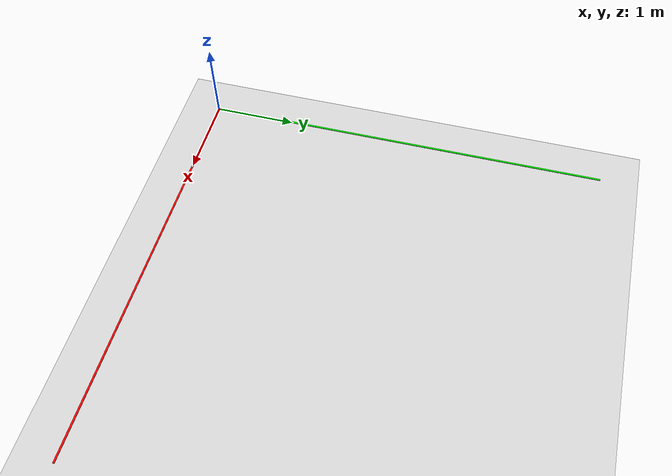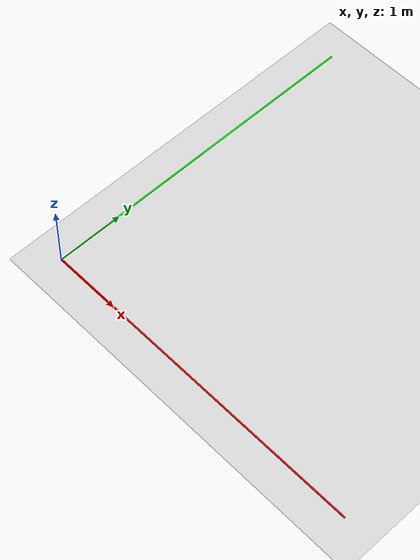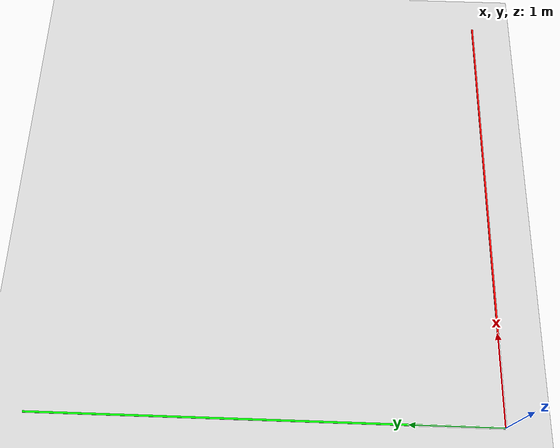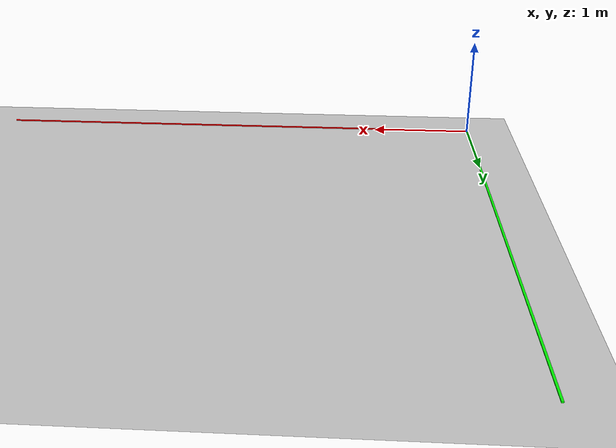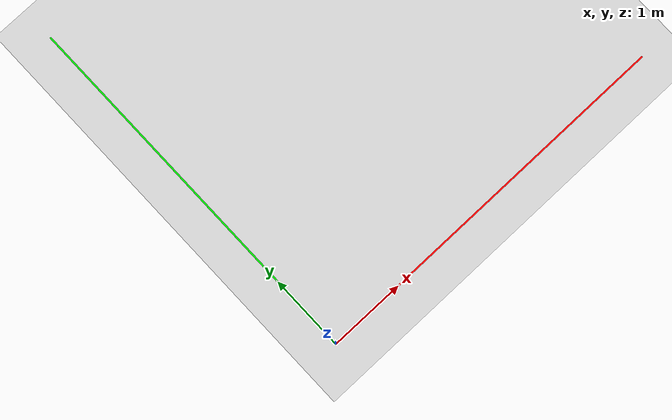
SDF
<?xml version="1.0" ?>
<!--
  Empty World SDF
  ===============

  Simple ground plane environment for Phase 1 LQR tracking.
-->
<sdf version="1.8">
  <world name="empty_world">

    <!-- Physics settings -->
    <physics name="1ms" type="ignored">
      <max_step_size>0.001</max_step_size>
      <real_time_factor>1.0</real_time_factor>
    </physics>

    <!-- Plugins -->
    <plugin filename="libgz-sim-physics-system.so"
            name="gz::sim::systems::Physics"/>
    <plugin filename="libgz-sim-user-commands-system.so"
            name="gz::sim::systems::UserCommands"/>
    <plugin filename="libgz-sim-scene-broadcaster-system.so"
            name="gz::sim::systems::SceneBroadcaster"/>

    <!-- Lighting -->
    <light type="directional" name="sun">
      <cast_shadows>true</cast_shadows>
      <pose>0 0 10 0 0 0</pose>
      <diffuse>0.8 0.8 0.8 1</diffuse>
      <specular>0.2 0.2 0.2 1</specular>
      <attenuation>
        <range>1000</range>
        <constant>0.9</constant>
        <linear>0.01</linear>
        <quadratic>0.001</quadratic>
      </attenuation>
      <direction>-0.5 0.1 -0.9</direction>
    </light>

    <!-- Ground Plane -->
    <model name="ground_plane">
      <static>true</static>
      <link name="link">
        <collision name="collision">
          <geometry>
            <plane>
              <normal>0 0 1</normal>
              <size>20 20</size>
            </plane>
          </geometry>
        </collision>
        <visual name="visual">
          <geometry>
            <plane>
              <normal>0 0 1</normal>
              <size>20 20</size>
            </plane>
          </geometry>
          <material>
            <ambient>0.8 0.8 0.8 1</ambient>
            <diffuse>0.8 0.8 0.8 1</diffuse>
            <specular>0.8 0.8 0.8 1</specular>
          </material>
        </visual>
      </link>
    </model>

    <!-- Grid lines for visualization (optional) -->
    <model name="grid_origin">
      <static>true</static>
      <pose>0 0 0.01 0 0 0</pose>
      <link name="link">
        <visual name="x_axis">
          <geometry>
            <box><size>5 0.02 0.01</size></box>
          </geometry>
          <material>
            <ambient>1 0 0 1</ambient>
            <diffuse>1 0 0 1</diffuse>
          </material>
          <pose>2.5 0 0 0 0 0</pose>
        </visual>
        <visual name="y_axis">
          <geometry>
            <box><size>0.02 5 0.01</size></box>
          </geometry>
          <material>
            <ambient>0 1 0 1</ambient>
            <diffuse>0 1 0 1</diffuse>
          </material>
          <pose>0 2.5 0 0 0 0</pose>
        </visual>
      </link>
    </model>

  </world>
</sdf>
